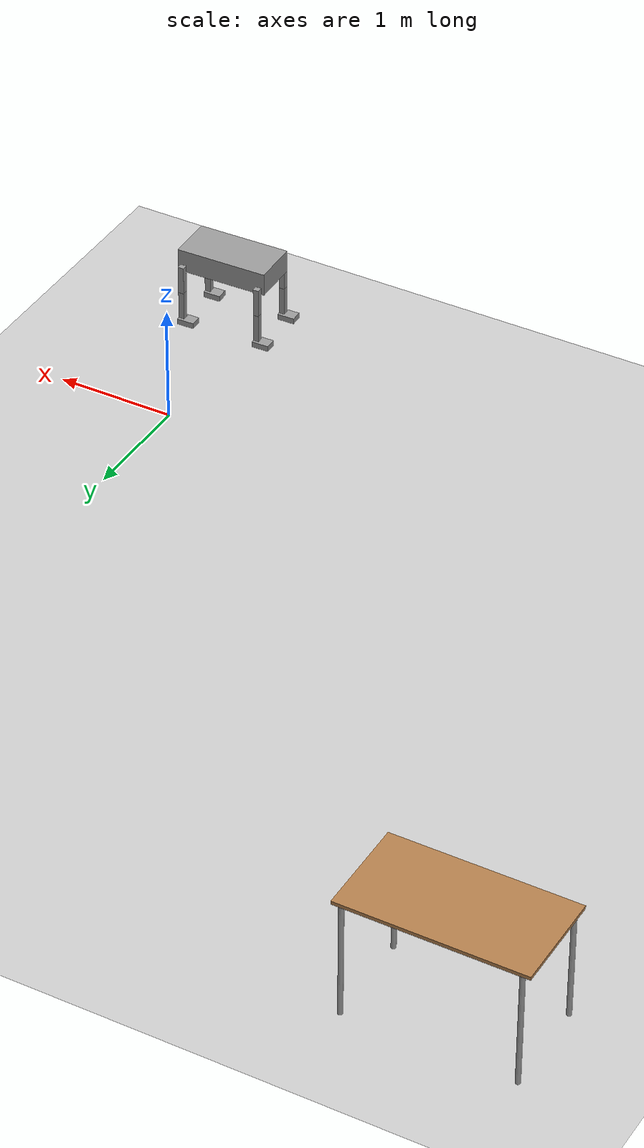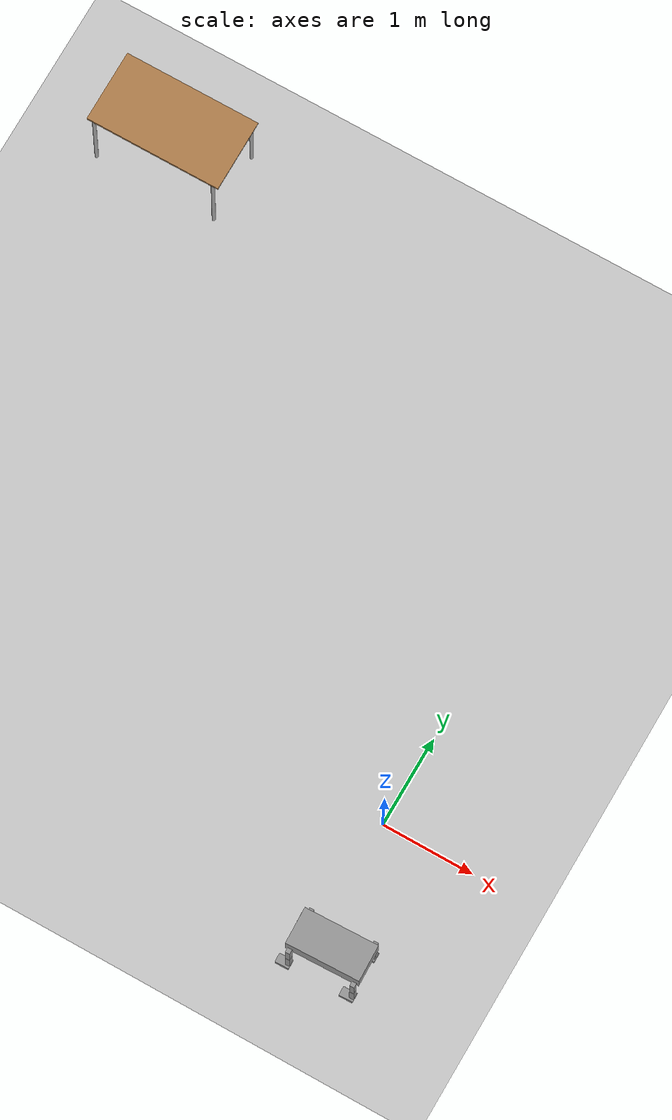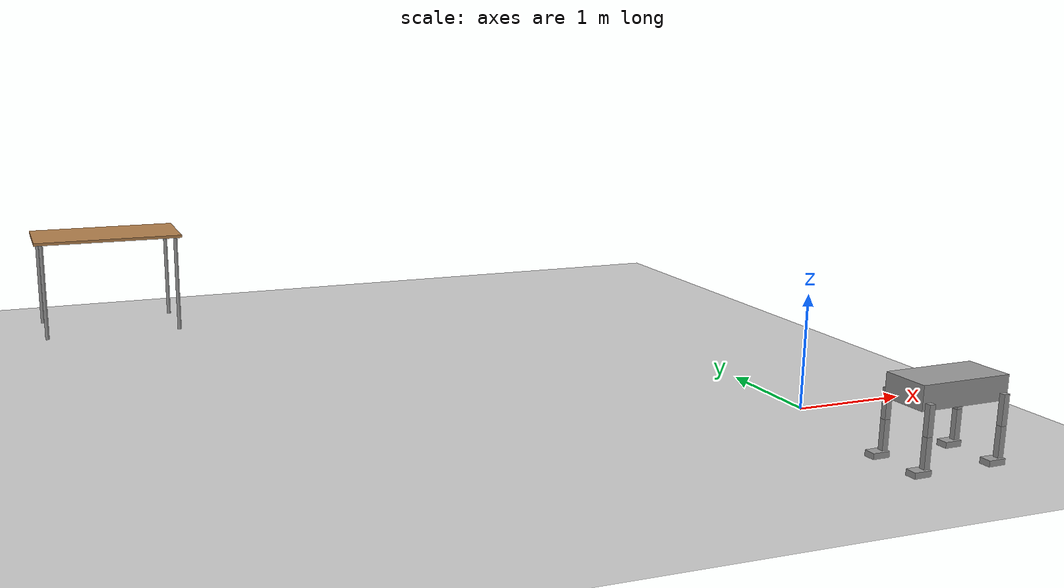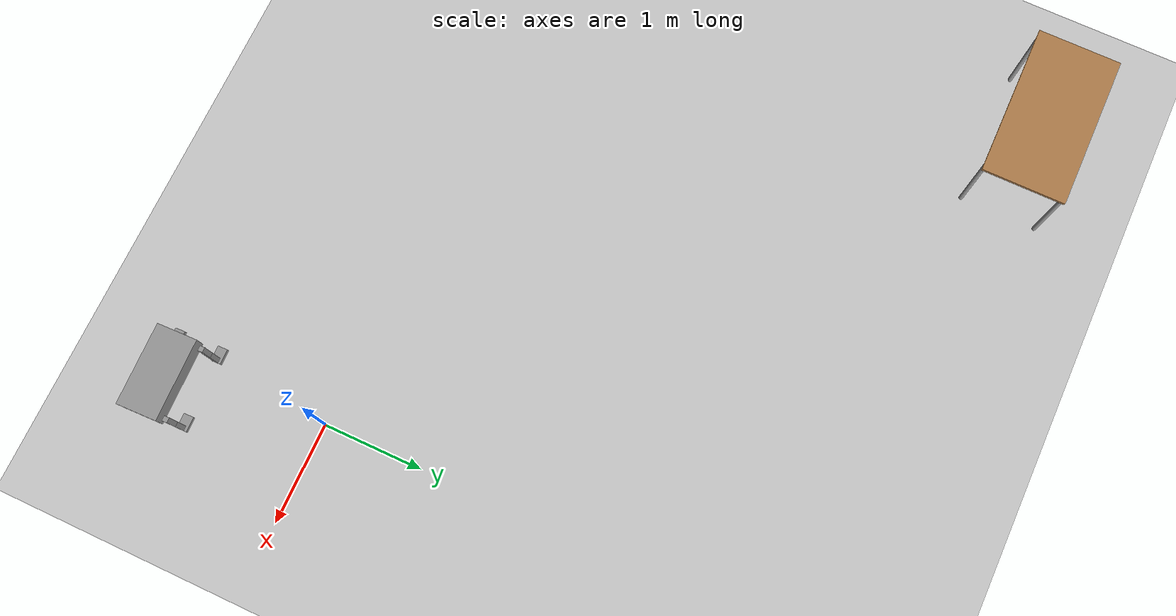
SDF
<sdf version="1.6">
 <world name="default">
  <model name="ground_plane">
   <static>1</static>
   <link name="link">
    <collision name="collision">
     <geometry><plane><normal>0 0 1</normal><size>100 100</size></plane></geometry>
     <surface><friction><ode><mu>100</mu><mu2>50</mu2></ode></friction></surface>
    </collision>
    <visual name="visual">
     <cast_shadows>0</cast_shadows>
     <geometry><plane><normal>0 0 1</normal><size>100 100</size></plane></geometry>
     <material>
      <script><uri>file://media/materials/scripts/gazebo.material</uri><name>Gazebo/Grey</name></script>
     </material>
    </visual>
   </link>
  </model>
  <model name="table_0">
   <static>1</static>
   <link name="link">
    <collision name="surface">
     <pose>0 0 1 0 -0 0</pose>
     <geometry><box><size>1.5 0.8 0.03</size></box></geometry>
     <surface><friction><ode><mu>0.6</mu><mu2>0.6</mu2></ode></friction></surface>
    </collision>
    <visual name="visual1">
     <pose>0 0 1 0 -0 0</pose>
     <geometry><box><size>1.5 0.8 0.03</size></box></geometry>
     <material>
      <script><uri>file://media/materials/scripts/gazebo.material</uri><name>Gazebo/Wood</name></script>
     </material>
    </visual>
    <collision name="front_left_leg">
     <pose>0.68 0.38 0.5 0 -0 0</pose>
     <geometry><cylinder><radius>0.02</radius><length>1</length></cylinder></geometry>
    </collision>
    <visual name="front_left_leg">
     <pose>0.68 0.38 0.5 0 -0 0</pose>
     <geometry><cylinder><radius>0.02</radius><length>1</length></cylinder></geometry>
     <material>
      <script><uri>file://media/materials/scripts/gazebo.material</uri><name>Gazebo/Grey</name></script>
     </material>
    </visual>
    <collision name="front_right_leg">
     <pose>0.68 -0.38 0.5 0 -0 0</pose>
     <geometry><cylinder><radius>0.02</radius><length>1</length></cylinder></geometry>
    </collision>
    <visual name="front_right_leg">
     <pose>0.68 -0.38 0.5 0 -0 0</pose>
     <geometry><cylinder><radius>0.02</radius><length>1</length></cylinder></geometry>
     <material>
      <script><uri>file://media/materials/scripts/gazebo.material</uri><name>Gazebo/Grey</name></script>
     </material>
    </visual>
    <collision name="back_right_leg">
     <pose>-0.68 -0.38 0.5 0 -0 0</pose>
     <geometry><cylinder><radius>0.02</radius><length>1</length></cylinder></geometry>
    </collision>
    <visual name="back_right_leg">
     <pose>-0.68 -0.38 0.5 0 -0 0</pose>
     <geometry><cylinder><radius>0.02</radius><length>1</length></cylinder></geometry>
     <material>
      <script><uri>file://media/materials/scripts/gazebo.material</uri><name>Gazebo/Grey</name></script>
     </material>
    </visual>
    <collision name="back_left_leg">
     <pose>-0.68 0.38 0.5 0 -0 0</pose>
     <geometry><cylinder><radius>0.02</radius><length>1</length></cylinder></geometry>
    </collision>
    <visual name="back_left_leg">
     <pose>-0.68 0.38 0.5 0 -0 0</pose>
     <geometry><cylinder><radius>0.02</radius><length>1</length></cylinder></geometry>
     <material>
      <script><uri>file://media/materials/scripts/gazebo.material</uri><name>Gazebo/Grey</name></script>
     </material>
    </visual>
   </link>
   <pose>-5.25 5 0 0 -0 0</pose>
  </model>
  <model name="robot">
   <link name="link_0">
    <pose>-0 -5 1 0 -0 0</pose>
    <inertial>
     <mass>1</mass>
     <inertia>
      <ixx>0.166667</ixx>
      <ixy>0</ixy>
      <ixz>0</ixz>
      <iyy>0.166667</iyy>
      <iyz>0</iyz>
      <izz>0.166667</izz>
     </inertia>
    </inertial>
    <visual name="visual">
     <geometry><box><size>0.8 0.4 0.2</size></box></geometry>
     <material>
      <lighting>1</lighting>
      <script><uri>file://media/materials/scripts/gazebo.material</uri><name>Gazebo/Grey</name></script>
      <shader type="pixel"><normal_map>__default__</normal_map></shader>
      <ambient>0.3 0.3 0.3 1</ambient>
      <diffuse>0.7 0.7 0.7 1</diffuse>
      <specular>0.01 0.01 0.01 1</specular>
      <emissive>0 0 0 1</emissive>
     </material>
    </visual>
    <collision name="collision">
     <geometry><box><size>0.8 0.4 0.2</size></box></geometry>
     <surface>
      <friction>
       <ode><mu>1</mu><mu2>1</mu2><fdir1>0 0 0</fdir1><slip1>0</slip1><slip2>0</slip2></ode>
       <torsional>
        <coefficient>1</coefficient>
        <patch_radius>0</patch_radius>
        <surface_radius>0</surface_radius>
        <use_patch_radius>1</use_patch_radius>
        <ode><slip>0</slip></ode>
       </torsional>
      </friction>
      <bounce><restitution_coefficient>0</restitution_coefficient><threshold>1e+06</threshold></bounce>
      <contact>
       <collide_without_contact>0</collide_without_contact>
       <collide_without_contact_bitmask>1</collide_without_contact_bitmask>
       <collide_bitmask>1</collide_bitmask>
       <ode>
        <soft_cfm>0</soft_cfm>
        <soft_erp>0.2</soft_erp>
        <kp>1e+13</kp>
        <kd>1</kd>
        <max_vel>0.01</max_vel>
        <min_depth>0</min_depth>
       </ode>
       <bullet>
        <split_impulse>1</split_impulse>
        <split_impulse_penetration_threshold>-0.01</split_impulse_penetration_threshold>
        <soft_cfm>0</soft_cfm>
        <soft_erp>0.2</soft_erp>
        <kp>1e+13</kp>
        <kd>1</kd>
       </bullet>
      </contact>
     </surface>
    </collision>
   </link>
   <link name="link_0_0">
    <pose>-0.4 -5.225 0.4375 0 -0 0</pose>
    <inertial>
     <mass>1</mass>
     <inertia>
      <ixx>0.166667</ixx>
      <ixy>0</ixy>
      <ixz>0</ixz>
      <iyy>0.166667</iyy>
      <iyz>0</iyz>
      <izz>0.166667</izz>
     </inertia>
    </inertial>
    <visual name="visual">
     <geometry><box><size>0.15 0.1 0.05</size></box></geometry>
     <material>
      <lighting>1</lighting>
      <script><uri>file://media/materials/scripts/gazebo.material</uri><name>Gazebo/Grey</name></script>
      <shader type="pixel"><normal_map>__default__</normal_map></shader>
      <ambient>0.3 0.3 0.3 1</ambient>
      <diffuse>0.7 0.7 0.7 1</diffuse>
      <specular>0.01 0.01 0.01 1</specular>
      <emissive>0 0 0 1</emissive>
     </material>
    </visual>
    <collision name="collision">
     <geometry><box><size>0.15 0.1 0.05</size></box></geometry>
     <surface>
      <friction>
       <ode><mu>1</mu><mu2>1</mu2><fdir1>0 0 0</fdir1><slip1>0</slip1><slip2>0</slip2></ode>
       <torsional>
        <coefficient>1</coefficient>
        <patch_radius>0</patch_radius>
        <surface_radius>0</surface_radius>
        <use_patch_radius>1</use_patch_radius>
        <ode><slip>0</slip></ode>
       </torsional>
      </friction>
      <bounce><restitution_coefficient>0</restitution_coefficient><threshold>1e+06</threshold></bounce>
      <contact>
       <collide_without_contact>0</collide_without_contact>
       <collide_without_contact_bitmask>1</collide_without_contact_bitmask>
       <collide_bitmask>1</collide_bitmask>
       <ode>
        <soft_cfm>0</soft_cfm>
        <soft_erp>0.2</soft_erp>
        <kp>1e+13</kp>
        <kd>1</kd>
        <max_vel>0.01</max_vel>
        <min_depth>0</min_depth>
       </ode>
       <bullet>
        <split_impulse>1</split_impulse>
        <split_impulse_penetration_threshold>-0.01</split_impulse_penetration_threshold>
        <soft_cfm>0</soft_cfm>
        <soft_erp>0.2</soft_erp>
        <kp>1e+13</kp>
        <kd>1</kd>
       </bullet>
      </contact>
     </surface>
    </collision>
   </link>
   <link name="link_0_0_clone">
    <pose>-0.4 -4.775 0.4375 0 -0 0</pose>
    <inertial>
     <mass>1</mass>
     <inertia>
      <ixx>0.166667</ixx>
      <ixy>0</ixy>
      <ixz>0</ixz>
      <iyy>0.166667</iyy>
      <iyz>0</iyz>
      <izz>0.166667</izz>
     </inertia>
    </inertial>
    <visual name="visual_0">
     <geometry><box><size>0.15 0.1 0.05</size></box></geometry>
     <material>
      <lighting>1</lighting>
      <script><uri>file://media/materials/scripts/gazebo.material</uri><name>Gazebo/Grey</name></script>
      <shader type="pixel"><normal_map>__default__</normal_map></shader>
      <ambient>0.3 0.3 0.3 1</ambient>
      <diffuse>0.7 0.7 0.7 1</diffuse>
      <specular>0.01 0.01 0.01 1</specular>
      <emissive>0 0 0 1</emissive>
     </material>
    </visual>
    <collision name="collision">
     <geometry><box><size>0.15 0.1 0.05</size></box></geometry>
     <surface>
      <friction>
       <ode><mu>1</mu><mu2>1</mu2><fdir1>0 0 0</fdir1><slip1>0</slip1><slip2>0</slip2></ode>
       <torsional>
        <coefficient>1</coefficient>
        <patch_radius>0</patch_radius>
        <surface_radius>0</surface_radius>
        <use_patch_radius>1</use_patch_radius>
        <ode><slip>0</slip></ode>
       </torsional>
      </friction>
      <bounce><restitution_coefficient>0</restitution_coefficient><threshold>1e+06</threshold></bounce>
      <contact>
       <collide_without_contact>0</collide_without_contact>
       <collide_without_contact_bitmask>1</collide_without_contact_bitmask>
       <collide_bitmask>1</collide_bitmask>
       <ode>
        <soft_cfm>0</soft_cfm>
        <soft_erp>0.2</soft_erp>
        <kp>1e+13</kp>
        <kd>1</kd>
        <max_vel>0.01</max_vel>
        <min_depth>0</min_depth>
       </ode>
       <bullet>
        <split_impulse>1</split_impulse>
        <split_impulse_penetration_threshold>-0.01</split_impulse_penetration_threshold>
        <soft_cfm>0</soft_cfm>
        <soft_erp>0.2</soft_erp>
        <kp>1e+13</kp>
        <kd>1</kd>
       </bullet>
      </contact>
     </surface>
    </collision>
   </link>
   <link name="link_0_0_clone_0">
    <pose>0.3 -5.225 0.4375 0 -0 0</pose>
    <inertial>
     <mass>1</mass>
     <inertia>
      <ixx>0.166667</ixx>
      <ixy>0</ixy>
      <ixz>0</ixz>
      <iyy>0.166667</iyy>
      <iyz>0</iyz>
      <izz>0.166667</izz>
     </inertia>
    </inertial>
    <visual name="visual_0">
     <geometry><box><size>0.15 0.1 0.05</size></box></geometry>
     <material>
      <lighting>1</lighting>
      <script><uri>file://media/materials/scripts/gazebo.material</uri><name>Gazebo/Grey</name></script>
      <shader type="pixel"><normal_map>__default__</normal_map></shader>
      <ambient>0.3 0.3 0.3 1</ambient>
      <diffuse>0.7 0.7 0.7 1</diffuse>
      <specular>0.01 0.01 0.01 1</specular>
      <emissive>0 0 0 1</emissive>
     </material>
    </visual>
    <collision name="collision">
     <geometry><box><size>0.15 0.1 0.05</size></box></geometry>
     <surface>
      <friction>
       <ode><mu>1</mu><mu2>1</mu2><fdir1>0 0 0</fdir1><slip1>0</slip1><slip2>0</slip2></ode>
       <torsional>
        <coefficient>1</coefficient>
        <patch_radius>0</patch_radius>
        <surface_radius>0</surface_radius>
        <use_patch_radius>1</use_patch_radius>
        <ode><slip>0</slip></ode>
       </torsional>
      </friction>
      <bounce><restitution_coefficient>0</restitution_coefficient><threshold>1e+06</threshold></bounce>
      <contact>
       <collide_without_contact>0</collide_without_contact>
       <collide_without_contact_bitmask>1</collide_without_contact_bitmask>
       <collide_bitmask>1</collide_bitmask>
       <ode>
        <soft_cfm>0</soft_cfm>
        <soft_erp>0.2</soft_erp>
        <kp>1e+13</kp>
        <kd>1</kd>
        <max_vel>0.01</max_vel>
        <min_depth>0</min_depth>
       </ode>
       <bullet>
        <split_impulse>1</split_impulse>
        <split_impulse_penetration_threshold>-0.01</split_impulse_penetration_threshold>
        <soft_cfm>0</soft_cfm>
        <soft_erp>0.2</soft_erp>
        <kp>1e+13</kp>
        <kd>1</kd>
       </bullet>
      </contact>
     </surface>
    </collision>
   </link>
   <link name="link_0_0_clone_0_clone">
    <pose>0.3 -4.775 0.4375 0 -0 0</pose>
    <inertial>
     <mass>1</mass>
     <inertia>
      <ixx>0.166667</ixx>
      <ixy>0</ixy>
      <ixz>0</ixz>
      <iyy>0.166667</iyy>
      <iyz>0</iyz>
      <izz>0.166667</izz>
     </inertia>
    </inertial>
    <visual name="visual_0">
     <geometry><box><size>0.15 0.1 0.05</size></box></geometry>
     <material>
      <lighting>1</lighting>
      <script><uri>file://media/materials/scripts/gazebo.material</uri><name>Gazebo/Grey</name></script>
      <shader type="pixel"><normal_map>__default__</normal_map></shader>
      <ambient>0.3 0.3 0.3 1</ambient>
      <diffuse>0.7 0.7 0.7 1</diffuse>
      <specular>0.01 0.01 0.01 1</specular>
      <emissive>0 0 0 1</emissive>
     </material>
    </visual>
    <collision name="collision">
     <geometry><box><size>0.15 0.1 0.05</size></box></geometry>
     <surface>
      <friction>
       <ode><mu>1</mu><mu2>1</mu2><fdir1>0 0 0</fdir1><slip1>0</slip1><slip2>0</slip2></ode>
       <torsional>
        <coefficient>1</coefficient>
        <patch_radius>0</patch_radius>
        <surface_radius>0</surface_radius>
        <use_patch_radius>1</use_patch_radius>
        <ode><slip>0</slip></ode>
       </torsional>
      </friction>
      <bounce><restitution_coefficient>0</restitution_coefficient><threshold>1e+06</threshold></bounce>
      <contact>
       <collide_without_contact>0</collide_without_contact>
       <collide_without_contact_bitmask>1</collide_without_contact_bitmask>
       <collide_bitmask>1</collide_bitmask>
       <ode>
        <soft_cfm>0</soft_cfm>
        <soft_erp>0.2</soft_erp>
        <kp>1e+13</kp>
        <kd>1</kd>
        <max_vel>0.01</max_vel>
        <min_depth>0</min_depth>
       </ode>
       <bullet>
        <split_impulse>1</split_impulse>
        <split_impulse_penetration_threshold>-0.01</split_impulse_penetration_threshold>
        <soft_cfm>0</soft_cfm>
        <soft_erp>0.2</soft_erp>
        <kp>1e+13</kp>
        <kd>1</kd>
       </bullet>
      </contact>
     </surface>
    </collision>
   </link>
   <link name="link_2_clone_clone">
    <pose>-0.35 -5.225 0.8375 0 -0 0</pose>
    <inertial>
     <mass>1</mass>
     <inertia>
      <ixx>0.166667</ixx>
      <ixy>0</ixy>
      <ixz>0</ixz>
      <iyy>0.166667</iyy>
      <iyz>0</iyz>
      <izz>0.166667</izz>
     </inertia>
    </inertial>
    <visual name="visual">
     <geometry><box><size>0.05 0.05 0.25</size></box></geometry>
     <material>
      <lighting>1</lighting>
      <script><uri>file://media/materials/scripts/gazebo.material</uri><name>Gazebo/Grey</name></script>
      <shader type="pixel"><normal_map>__default__</normal_map></shader>
      <ambient>0.3 0.3 0.3 1</ambient>
      <diffuse>0.7 0.7 0.7 1</diffuse>
      <specular>0.01 0.01 0.01 1</specular>
      <emissive>0 0 0 1</emissive>
     </material>
    </visual>
    <collision name="collision">
     <geometry><box><size>0.05 0.05 0.25</size></box></geometry>
     <surface>
      <friction>
       <ode><mu>1</mu><mu2>1</mu2><fdir1>0 0 0</fdir1><slip1>0</slip1><slip2>0</slip2></ode>
       <torsional>
        <coefficient>1</coefficient>
        <patch_radius>0</patch_radius>
        <surface_radius>0</surface_radius>
        <use_patch_radius>1</use_patch_radius>
        <ode><slip>0</slip></ode>
       </torsional>
      </friction>
      <bounce><restitution_coefficient>0</restitution_coefficient><threshold>1e+06</threshold></bounce>
      <contact>
       <collide_without_contact>0</collide_without_contact>
       <collide_without_contact_bitmask>1</collide_without_contact_bitmask>
       <collide_bitmask>1</collide_bitmask>
       <ode>
        <soft_cfm>0</soft_cfm>
        <soft_erp>0.2</soft_erp>
        <kp>1e+13</kp>
        <kd>1</kd>
        <max_vel>0.01</max_vel>
        <min_depth>0</min_depth>
       </ode>
       <bullet>
        <split_impulse>1</split_impulse>
        <split_impulse_penetration_threshold>-0.01</split_impulse_penetration_threshold>
        <soft_cfm>0</soft_cfm>
        <soft_erp>0.2</soft_erp>
        <kp>1e+13</kp>
        <kd>1</kd>
       </bullet>
      </contact>
     </surface>
    </collision>
   </link>
   <link name="link_2_clone_clone_clone">
    <pose>0.35 -5.225 0.8375 0 -0 0</pose>
    <inertial>
     <mass>1</mass>
     <inertia>
      <ixx>0.166667</ixx>
      <ixy>0</ixy>
      <ixz>0</ixz>
      <iyy>0.166667</iyy>
      <iyz>0</iyz>
      <izz>0.166667</izz>
     </inertia>
    </inertial>
    <visual name="visual">
     <geometry><box><size>0.05 0.05 0.25</size></box></geometry>
     <material>
      <lighting>1</lighting>
      <script><uri>file://media/materials/scripts/gazebo.material</uri><name>Gazebo/Grey</name></script>
      <shader type="pixel"><normal_map>__default__</normal_map></shader>
      <ambient>0.3 0.3 0.3 1</ambient>
      <diffuse>0.7 0.7 0.7 1</diffuse>
      <specular>0.01 0.01 0.01 1</specular>
      <emissive>0 0 0 1</emissive>
     </material>
    </visual>
    <collision name="collision">
     <geometry><box><size>0.05 0.05 0.25</size></box></geometry>
     <surface>
      <friction>
       <ode><mu>1</mu><mu2>1</mu2><fdir1>0 0 0</fdir1><slip1>0</slip1><slip2>0</slip2></ode>
       <torsional>
        <coefficient>1</coefficient>
        <patch_radius>0</patch_radius>
        <surface_radius>0</surface_radius>
        <use_patch_radius>1</use_patch_radius>
        <ode><slip>0</slip></ode>
       </torsional>
      </friction>
      <bounce><restitution_coefficient>0</restitution_coefficient><threshold>1e+06</threshold></bounce>
      <contact>
       <collide_without_contact>0</collide_without_contact>
       <collide_without_contact_bitmask>1</collide_without_contact_bitmask>
       <collide_bitmask>1</collide_bitmask>
       <ode>
        <soft_cfm>0</soft_cfm>
        <soft_erp>0.2</soft_erp>
        <kp>1e+13</kp>
        <kd>1</kd>
        <max_vel>0.01</max_vel>
        <min_depth>0</min_depth>
       </ode>
       <bullet>
        <split_impulse>1</split_impulse>
        <split_impulse_penetration_threshold>-0.01</split_impulse_penetration_threshold>
        <soft_cfm>0</soft_cfm>
        <soft_erp>0.2</soft_erp>
        <kp>1e+13</kp>
        <kd>1</kd>
       </bullet>
      </contact>
     </surface>
    </collision>
   </link>
   <link name="link_2_clone_clone_clone_0">
    <pose>-0.35 -4.775 0.8375 0 -0 0</pose>
    <inertial>
     <mass>1</mass>
     <inertia>
      <ixx>0.166667</ixx>
      <ixy>0</ixy>
      <ixz>0</ixz>
      <iyy>0.166667</iyy>
      <iyz>0</iyz>
      <izz>0.166667</izz>
     </inertia>
    </inertial>
    <visual name="visual">
     <geometry><box><size>0.05 0.05 0.25</size></box></geometry>
     <material>
      <lighting>1</lighting>
      <script><uri>file://media/materials/scripts/gazebo.material</uri><name>Gazebo/Grey</name></script>
      <shader type="pixel"><normal_map>__default__</normal_map></shader>
      <ambient>0.3 0.3 0.3 1</ambient>
      <diffuse>0.7 0.7 0.7 1</diffuse>
      <specular>0.01 0.01 0.01 1</specular>
      <emissive>0 0 0 1</emissive>
     </material>
    </visual>
    <collision name="collision">
     <geometry><box><size>0.05 0.05 0.25</size></box></geometry>
     <surface>
      <friction>
       <ode><mu>1</mu><mu2>1</mu2><fdir1>0 0 0</fdir1><slip1>0</slip1><slip2>0</slip2></ode>
       <torsional>
        <coefficient>1</coefficient>
        <patch_radius>0</patch_radius>
        <surface_radius>0</surface_radius>
        <use_patch_radius>1</use_patch_radius>
        <ode><slip>0</slip></ode>
       </torsional>
      </friction>
      <bounce><restitution_coefficient>0</restitution_coefficient><threshold>1e+06</threshold></bounce>
      <contact>
       <collide_without_contact>0</collide_without_contact>
       <collide_without_contact_bitmask>1</collide_without_contact_bitmask>
       <collide_bitmask>1</collide_bitmask>
       <ode>
        <soft_cfm>0</soft_cfm>
        <soft_erp>0.2</soft_erp>
        <kp>1e+13</kp>
        <kd>1</kd>
        <max_vel>0.01</max_vel>
        <min_depth>0</min_depth>
       </ode>
       <bullet>
        <split_impulse>1</split_impulse>
        <split_impulse_penetration_threshold>-0.01</split_impulse_penetration_threshold>
        <soft_cfm>0</soft_cfm>
        <soft_erp>0.2</soft_erp>
        <kp>1e+13</kp>
        <kd>1</kd>
       </bullet>
      </contact>
     </surface>
    </collision>
   </link>
   <link name="link_2_clone_clone_clone_0_clone">
    <pose>0.35 -4.775 0.8375 0 -0 0</pose>
    <inertial>
     <mass>1</mass>
     <inertia>
      <ixx>0.166667</ixx>
      <ixy>0</ixy>
      <ixz>0</ixz>
      <iyy>0.166667</iyy>
      <iyz>0</iyz>
      <izz>0.166667</izz>
     </inertia>
    </inertial>
    <visual name="visual">
     <geometry><box><size>0.05 0.05 0.25</size></box></geometry>
     <material>
      <lighting>1</lighting>
      <script><uri>file://media/materials/scripts/gazebo.material</uri><name>Gazebo/Grey</name></script>
      <shader type="pixel"><normal_map>__default__</normal_map></shader>
      <ambient>0.3 0.3 0.3 1</ambient>
      <diffuse>0.7 0.7 0.7 1</diffuse>
      <specular>0.01 0.01 0.01 1</specular>
      <emissive>0 0 0 1</emissive>
     </material>
    </visual>
    <collision name="collision">
     <geometry><box><size>0.05 0.05 0.25</size></box></geometry>
     <surface>
      <friction>
       <ode><mu>1</mu><mu2>1</mu2><fdir1>0 0 0</fdir1><slip1>0</slip1><slip2>0</slip2></ode>
       <torsional>
        <coefficient>1</coefficient>
        <patch_radius>0</patch_radius>
        <surface_radius>0</surface_radius>
        <use_patch_radius>1</use_patch_radius>
        <ode><slip>0</slip></ode>
       </torsional>
      </friction>
      <bounce><restitution_coefficient>0</restitution_coefficient><threshold>1e+06</threshold></bounce>
      <contact>
       <collide_without_contact>0</collide_without_contact>
       <collide_without_contact_bitmask>1</collide_without_contact_bitmask>
       <collide_bitmask>1</collide_bitmask>
       <ode>
        <soft_cfm>0</soft_cfm>
        <soft_erp>0.2</soft_erp>
        <kp>1e+13</kp>
        <kd>1</kd>
        <max_vel>0.01</max_vel>
        <min_depth>0</min_depth>
       </ode>
       <bullet>
        <split_impulse>1</split_impulse>
        <split_impulse_penetration_threshold>-0.01</split_impulse_penetration_threshold>
        <soft_cfm>0</soft_cfm>
        <soft_erp>0.2</soft_erp>
        <kp>1e+13</kp>
        <kd>1</kd>
       </bullet>
      </contact>
     </surface>
    </collision>
   </link>
   <link name="link_2_clone_clone_clone_1">
    <pose>-0.35 -5.225 0.5875 0 -0 0</pose>
    <inertial>
     <mass>1</mass>
     <inertia>
      <ixx>0.166667</ixx>
      <ixy>0</ixy>
      <ixz>0</ixz>
      <iyy>0.166667</iyy>
      <iyz>0</iyz>
      <izz>0.166667</izz>
     </inertia>
    </inertial>
    <visual name="visual">
     <geometry><box><size>0.05 0.05 0.25</size></box></geometry>
     <material>
      <lighting>1</lighting>
      <script><uri>file://media/materials/scripts/gazebo.material</uri><name>Gazebo/Grey</name></script>
      <shader type="pixel"><normal_map>__default__</normal_map></shader>
      <ambient>0.3 0.3 0.3 1</ambient>
      <diffuse>0.7 0.7 0.7 1</diffuse>
      <specular>0.01 0.01 0.01 1</specular>
      <emissive>0 0 0 1</emissive>
     </material>
    </visual>
    <collision name="collision">
     <geometry><box><size>0.05 0.05 0.25</size></box></geometry>
     <surface>
      <friction>
       <ode><mu>1</mu><mu2>1</mu2><fdir1>0 0 0</fdir1><slip1>0</slip1><slip2>0</slip2></ode>
       <torsional>
        <coefficient>1</coefficient>
        <patch_radius>0</patch_radius>
        <surface_radius>0</surface_radius>
        <use_patch_radius>1</use_patch_radius>
        <ode><slip>0</slip></ode>
       </torsional>
      </friction>
      <bounce><restitution_coefficient>0</restitution_coefficient><threshold>1e+06</threshold></bounce>
      <contact>
       <collide_without_contact>0</collide_without_contact>
       <collide_without_contact_bitmask>1</collide_without_contact_bitmask>
       <collide_bitmask>1</collide_bitmask>
       <ode>
        <soft_cfm>0</soft_cfm>
        <soft_erp>0.2</soft_erp>
        <kp>1e+13</kp>
        <kd>1</kd>
        <max_vel>0.01</max_vel>
        <min_depth>0</min_depth>
       </ode>
       <bullet>
        <split_impulse>1</split_impulse>
        <split_impulse_penetration_threshold>-0.01</split_impulse_penetration_threshold>
        <soft_cfm>0</soft_cfm>
        <soft_erp>0.2</soft_erp>
        <kp>1e+13</kp>
        <kd>1</kd>
       </bullet>
      </contact>
     </surface>
    </collision>
   </link>
   <link name="link_2_clone_clone_clone_2">
    <pose>0.35 -5.225 0.5875 0 -0 0</pose>
    <inertial>
     <mass>1</mass>
     <inertia>
      <ixx>0.166667</ixx>
      <ixy>0</ixy>
      <ixz>0</ixz>
      <iyy>0.166667</iyy>
      <iyz>0</iyz>
      <izz>0.166667</izz>
     </inertia>
    </inertial>
    <visual name="visual">
     <geometry><box><size>0.05 0.05 0.25</size></box></geometry>
     <material>
      <lighting>1</lighting>
      <script><uri>file://media/materials/scripts/gazebo.material</uri><name>Gazebo/Grey</name></script>
      <shader type="pixel"><normal_map>__default__</normal_map></shader>
      <ambient>0.3 0.3 0.3 1</ambient>
      <diffuse>0.7 0.7 0.7 1</diffuse>
      <specular>0.01 0.01 0.01 1</specular>
      <emissive>0 0 0 1</emissive>
     </material>
    </visual>
    <collision name="collision">
     <geometry><box><size>0.05 0.05 0.25</size></box></geometry>
     <surface>
      <friction>
       <ode><mu>1</mu><mu2>1</mu2><fdir1>0 0 0</fdir1><slip1>0</slip1><slip2>0</slip2></ode>
       <torsional>
        <coefficient>1</coefficient>
        <patch_radius>0</patch_radius>
        <surface_radius>0</surface_radius>
        <use_patch_radius>1</use_patch_radius>
        <ode><slip>0</slip></ode>
       </torsional>
      </friction>
      <bounce><restitution_coefficient>0</restitution_coefficient><threshold>1e+06</threshold></bounce>
      <contact>
       <collide_without_contact>0</collide_without_contact>
       <collide_without_contact_bitmask>1</collide_without_contact_bitmask>
       <collide_bitmask>1</collide_bitmask>
       <ode>
        <soft_cfm>0</soft_cfm>
        <soft_erp>0.2</soft_erp>
        <kp>1e+13</kp>
        <kd>1</kd>
        <max_vel>0.01</max_vel>
        <min_depth>0</min_depth>
       </ode>
       <bullet>
        <split_impulse>1</split_impulse>
        <split_impulse_penetration_threshold>-0.01</split_impulse_penetration_threshold>
        <soft_cfm>0</soft_cfm>
        <soft_erp>0.2</soft_erp>
        <kp>1e+13</kp>
        <kd>1</kd>
       </bullet>
      </contact>
     </surface>
    </collision>
   </link>
   <link name="link_2_clone_clone_clone_2_clone">
    <pose>0.35 -4.775 0.5875 0 -0 0</pose>
    <inertial>
     <mass>1</mass>
     <inertia>
      <ixx>0.166667</ixx>
      <ixy>0</ixy>
      <ixz>0</ixz>
      <iyy>0.166667</iyy>
      <iyz>0</iyz>
      <izz>0.166667</izz>
     </inertia>
    </inertial>
    <visual name="visual">
     <geometry><box><size>0.05 0.05 0.25</size></box></geometry>
     <material>
      <lighting>1</lighting>
      <script><uri>file://media/materials/scripts/gazebo.material</uri><name>Gazebo/Grey</name></script>
      <shader type="pixel"><normal_map>__default__</normal_map></shader>
      <ambient>0.3 0.3 0.3 1</ambient>
      <diffuse>0.7 0.7 0.7 1</diffuse>
      <specular>0.01 0.01 0.01 1</specular>
      <emissive>0 0 0 1</emissive>
     </material>
    </visual>
    <collision name="collision">
     <geometry><box><size>0.05 0.05 0.25</size></box></geometry>
     <surface>
      <friction>
       <ode><mu>1</mu><mu2>1</mu2><fdir1>0 0 0</fdir1><slip1>0</slip1><slip2>0</slip2></ode>
       <torsional>
        <coefficient>1</coefficient>
        <patch_radius>0</patch_radius>
        <surface_radius>0</surface_radius>
        <use_patch_radius>1</use_patch_radius>
        <ode><slip>0</slip></ode>
       </torsional>
      </friction>
      <bounce><restitution_coefficient>0</restitution_coefficient><threshold>1e+06</threshold></bounce>
      <contact>
       <collide_without_contact>0</collide_without_contact>
       <collide_without_contact_bitmask>1</collide_without_contact_bitmask>
       <collide_bitmask>1</collide_bitmask>
       <ode>
        <soft_cfm>0</soft_cfm>
        <soft_erp>0.2</soft_erp>
        <kp>1e+13</kp>
        <kd>1</kd>
        <max_vel>0.01</max_vel>
        <min_depth>0</min_depth>
       </ode>
       <bullet>
        <split_impulse>1</split_impulse>
        <split_impulse_penetration_threshold>-0.01</split_impulse_penetration_threshold>
        <soft_cfm>0</soft_cfm>
        <soft_erp>0.2</soft_erp>
        <kp>1e+13</kp>
        <kd>1</kd>
       </bullet>
      </contact>
     </surface>
    </collision>
   </link>
   <link name="link_2_clone_clone_clone_2_clone_clone">
    <pose>-0.35 -4.775 0.5875 0 -0 0</pose>
    <inertial>
     <mass>1</mass>
     <inertia>
      <ixx>0.166667</ixx>
      <ixy>0</ixy>
      <ixz>0</ixz>
      <iyy>0.166667</iyy>
      <iyz>0</iyz>
      <izz>0.166667</izz>
     </inertia>
    </inertial>
    <visual name="visual">
     <geometry><box><size>0.05 0.05 0.25</size></box></geometry>
     <material>
      <lighting>1</lighting>
      <script><uri>file://media/materials/scripts/gazebo.material</uri><name>Gazebo/Grey</name></script>
      <shader type="pixel"><normal_map>__default__</normal_map></shader>
      <ambient>0.3 0.3 0.3 1</ambient>
      <diffuse>0.7 0.7 0.7 1</diffuse>
      <specular>0.01 0.01 0.01 1</specular>
      <emissive>0 0 0 1</emissive>
     </material>
    </visual>
    <collision name="collision">
     <geometry><box><size>0.05 0.05 0.25</size></box></geometry>
     <surface>
      <friction>
       <ode><mu>1</mu><mu2>1</mu2><fdir1>0 0 0</fdir1><slip1>0</slip1><slip2>0</slip2></ode>
       <torsional>
        <coefficient>1</coefficient>
        <patch_radius>0</patch_radius>
        <surface_radius>0</surface_radius>
        <use_patch_radius>1</use_patch_radius>
        <ode><slip>0</slip></ode>
       </torsional>
      </friction>
      <bounce><restitution_coefficient>0</restitution_coefficient><threshold>1e+06</threshold></bounce>
      <contact>
       <collide_without_contact>0</collide_without_contact>
       <collide_without_contact_bitmask>1</collide_without_contact_bitmask>
       <collide_bitmask>1</collide_bitmask>
       <ode>
        <soft_cfm>0</soft_cfm>
        <soft_erp>0.2</soft_erp>
        <kp>1e+13</kp>
        <kd>1</kd>
        <max_vel>0.01</max_vel>
        <min_depth>0</min_depth>
       </ode>
       <bullet>
        <split_impulse>1</split_impulse>
        <split_impulse_penetration_threshold>-0.01</split_impulse_penetration_threshold>
        <soft_cfm>0</soft_cfm>
        <soft_erp>0.2</soft_erp>
        <kp>1e+13</kp>
        <kd>1</kd>
       </bullet>
      </contact>
     </surface>
    </collision>
   </link>
   <joint name="link_0_JOINT_0_0" type="revolute">
    <parent>link_0</parent>
    <child>link_2_clone_clone_clone_0</child>
    <pose>0 0 0.09375 0 -0 0</pose>
    <axis>
     <xyz>0 1 0</xyz>
     <use_parent_model_frame>0</use_parent_model_frame>
     <limit><lower>-0.174533</lower><upper>0.174533</upper><effort>-1</effort><velocity>-1</velocity></limit>
     <dynamics>
      <spring_reference>0</spring_reference>
      <spring_stiffness>0</spring_stiffness>
      <damping>0</damping>
      <friction>0</friction>
     </dynamics>
    </axis>
    <physics>
     <ode><limit><cfm>0</cfm><erp>0.2</erp></limit><suspension><cfm>0</cfm><erp>0.2</erp></suspension></ode>
    </physics>
   </joint>
   <joint name="link_0_JOINT_0" type="revolute">
    <parent>link_0</parent>
    <child>link_2_clone_clone</child>
    <pose>0 0 0.09375 0 -0 0</pose>
    <axis>
     <xyz>0 -1 0</xyz>
     <use_parent_model_frame>0</use_parent_model_frame>
     <limit><lower>-0.174533</lower><upper>0.174533</upper><effort>-1</effort><velocity>-1</velocity></limit>
     <dynamics>
      <spring_reference>0</spring_reference>
      <spring_stiffness>0</spring_stiffness>
      <damping>0</damping>
      <friction>0</friction>
     </dynamics>
    </axis>
    <physics>
     <ode><limit><cfm>0</cfm><erp>0.2</erp></limit><suspension><cfm>0</cfm><erp>0.2</erp></suspension></ode>
    </physics>
   </joint>
   <joint name="link_0_JOINT_1" type="revolute">
    <parent>link_0</parent>
    <child>link_2_clone_clone_clone</child>
    <pose>0 0 0.09375 0 -0 0</pose>
    <axis>
     <xyz>0 -1 0</xyz>
     <use_parent_model_frame>0</use_parent_model_frame>
     <limit><lower>-0.174533</lower><upper>0.174533</upper><effort>-1</effort><velocity>-1</velocity></limit>
     <dynamics>
      <spring_reference>0</spring_reference>
      <spring_stiffness>0</spring_stiffness>
      <damping>0</damping>
      <friction>0</friction>
     </dynamics>
    </axis>
    <physics>
     <ode><limit><cfm>0</cfm><erp>0.2</erp></limit><suspension><cfm>0</cfm><erp>0.2</erp></suspension></ode>
    </physics>
   </joint>
   <joint name="link_0_JOINT_2" type="revolute">
    <parent>link_0</parent>
    <child>link_2_clone_clone_clone_0_clone</child>
    <pose>0 0 0.09375 0 -0 0</pose>
    <axis>
     <xyz>0 1 0</xyz>
     <use_parent_model_frame>0</use_parent_model_frame>
     <limit><lower>-0.174533</lower><upper>0.174533</upper><effort>-1</effort><velocity>-1</velocity></limit>
     <dynamics>
      <spring_reference>0</spring_reference>
      <spring_stiffness>0</spring_stiffness>
      <damping>0</damping>
      <friction>0</friction>
     </dynamics>
    </axis>
    <physics>
     <ode><limit><cfm>0</cfm><erp>0.2</erp></limit><suspension><cfm>0</cfm><erp>0.2</erp></suspension></ode>
    </physics>
   </joint>
   <joint name="link_2_clone_clone_JOINT_3" type="revolute">
    <parent>link_2_clone_clone</parent>
    <child>link_2_clone_clone_clone_1</child>
    <pose>0 0 0.125 0 -0 0</pose>
    <axis>
     <xyz>0 -1 0</xyz>
     <use_parent_model_frame>0</use_parent_model_frame>
     <limit><lower>-0.174533</lower><upper>0.174533</upper><effort>-1</effort><velocity>-1</velocity></limit>
     <dynamics>
      <spring_reference>0</spring_reference>
      <spring_stiffness>0</spring_stiffness>
      <damping>0</damping>
      <friction>0</friction>
     </dynamics>
    </axis>
    <physics>
     <ode><limit><cfm>0</cfm><erp>0.2</erp></limit><suspension><cfm>0</cfm><erp>0.2</erp></suspension></ode>
    </physics>
   </joint>
   <joint name="link_2_clone_clone_clone_0_JOINT_6" type="revolute">
    <parent>link_2_clone_clone_clone_0</parent>
    <child>link_2_clone_clone_clone_2_clone_clone</child>
    <pose>0 0 0.125 0 -0 0</pose>
    <axis>
     <xyz>0 1 0</xyz>
     <use_parent_model_frame>0</use_parent_model_frame>
     <limit><lower>-0.174533</lower><upper>0.174533</upper><effort>-1</effort><velocity>-1</velocity></limit>
     <dynamics>
      <spring_reference>0</spring_reference>
      <spring_stiffness>0</spring_stiffness>
      <damping>0</damping>
      <friction>0</friction>
     </dynamics>
    </axis>
    <physics>
     <ode><limit><cfm>0</cfm><erp>0.2</erp></limit><suspension><cfm>0</cfm><erp>0.2</erp></suspension></ode>
    </physics>
   </joint>
   <joint name="link_2_clone_clone_clone_0_clone_JOINT_5" type="revolute">
    <parent>link_2_clone_clone_clone_0_clone</parent>
    <child>link_2_clone_clone_clone_2_clone</child>
    <pose>0 0 0.125 0 -0 0</pose>
    <axis>
     <xyz>0 1 0</xyz>
     <use_parent_model_frame>0</use_parent_model_frame>
     <limit><lower>-0.174533</lower><upper>0.174533</upper><effort>-1</effort><velocity>-1</velocity></limit>
     <dynamics>
      <spring_reference>0</spring_reference>
      <spring_stiffness>0</spring_stiffness>
      <damping>0</damping>
      <friction>0</friction>
     </dynamics>
    </axis>
    <physics>
     <ode><limit><cfm>0</cfm><erp>0.2</erp></limit><suspension><cfm>0</cfm><erp>0.2</erp></suspension></ode>
    </physics>
   </joint>
   <joint name="link_2_clone_clone_clone_1_JOINT_7" type="fixed">
    <parent>link_2_clone_clone_clone_1</parent>
    <child>link_0_0</child>
    <physics>
     <ode><limit><cfm>0</cfm><erp>0.2</erp></limit><suspension><cfm>0</cfm><erp>0.2</erp></suspension></ode>
    </physics>
   </joint>
   <joint name="link_2_clone_clone_clone_2_JOINT_10" type="fixed">
    <parent>link_2_clone_clone_clone_2</parent>
    <child>link_0_0_clone_0</child>
    <physics>
     <ode><limit><cfm>0</cfm><erp>0.2</erp></limit><suspension><cfm>0</cfm><erp>0.2</erp></suspension></ode>
    </physics>
   </joint>
   <joint name="link_2_clone_clone_clone_2_clone_JOINT_9" type="fixed">
    <parent>link_2_clone_clone_clone_2_clone</parent>
    <child>link_0_0_clone_0_clone</child>
    <physics>
     <ode><limit><cfm>0</cfm><erp>0.2</erp></limit><suspension><cfm>0</cfm><erp>0.2</erp></suspension></ode>
    </physics>
   </joint>
   <joint name="link_2_clone_clone_clone_2_clone_clone_JOINT_8" type="fixed">
    <parent>link_2_clone_clone_clone_2_clone_clone</parent>
    <child>link_0_0_clone</child>
    <physics>
     <ode><limit><cfm>0</cfm><erp>0.2</erp></limit><suspension><cfm>0</cfm><erp>0.2</erp></suspension></ode>
    </physics>
   </joint>
   <joint name="link_2_clone_clone_clone_JOINT_4" type="revolute">
    <parent>link_2_clone_clone_clone</parent>
    <child>link_2_clone_clone_clone_2</child>
    <pose>0 0 0.125 0 -0 0</pose>
    <axis>
     <xyz>0 -1 0</xyz>
     <use_parent_model_frame>0</use_parent_model_frame>
     <limit><lower>-0.174533</lower><upper>0.174533</upper><effort>-1</effort><velocity>-1</velocity></limit>
     <dynamics>
      <spring_reference>0</spring_reference>
      <spring_stiffness>0</spring_stiffness>
      <damping>0</damping>
      <friction>0</friction>
     </dynamics>
    </axis>
    <physics>
     <ode><limit><cfm>0</cfm><erp>0.2</erp></limit><suspension><cfm>0</cfm><erp>0.2</erp></suspension></ode>
    </physics>
   </joint>
   <static>0</static>
   <pose>0.091725 3.56714 -0.415819 1e-06 1e-06 0.028332</pose>
  </model>
 </world>
</sdf>
